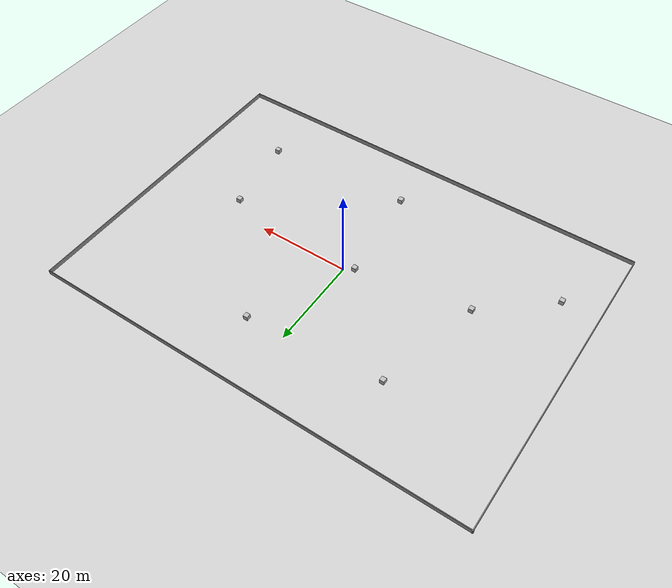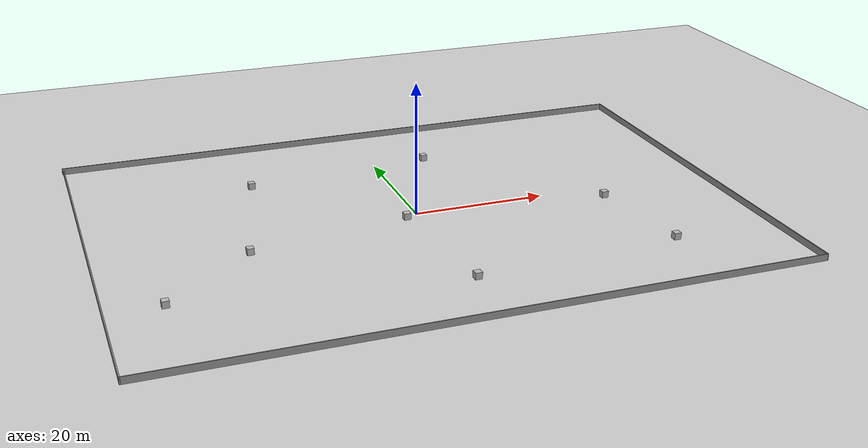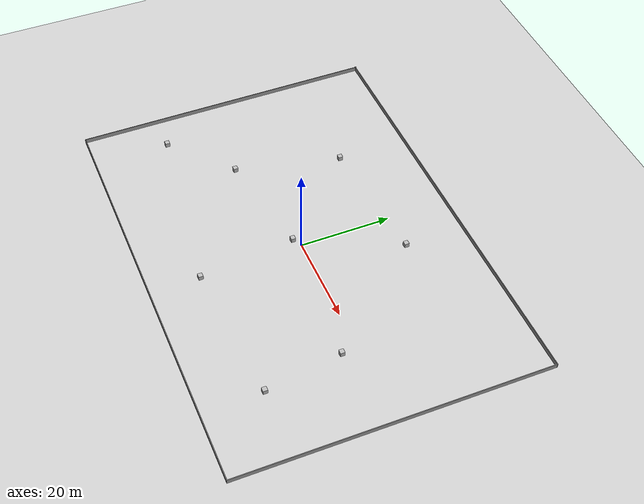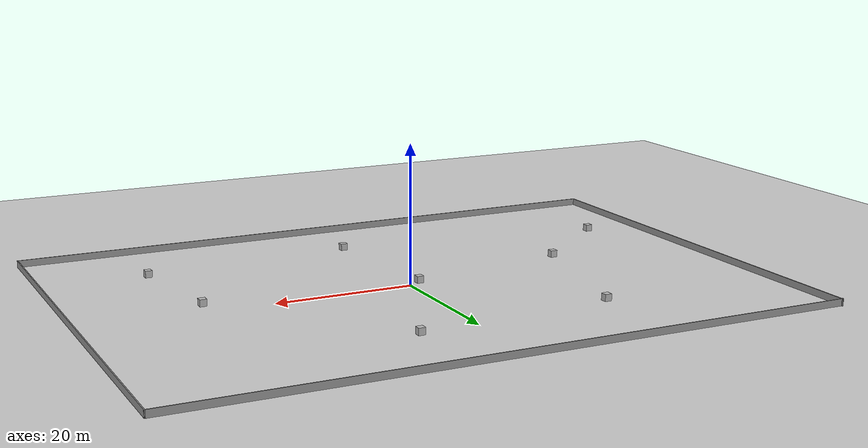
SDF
<sdf version="1.4">
 <world name="default">
  <include><uri>model://ground_plane</uri></include>
  <include><uri>model://sun</uri></include>
  <plugin name="dtfPlugin" filename="libdist_to_flag.so"><nb_flags>5</nb_flags></plugin>
  <include><uri>model://walls</uri><name>limits</name></include>
  <include><uri>model://cube</uri><pose>-1.9 -1.2 0 0 0 0</pose><name>obstacle_1</name></include>
  <include><uri>model://cube</uri><pose>-26 -5.2 0 0 0 0</pose><name>obstacle_2</name></include>
  <include><uri>model://cube</uri><pose>0.5 -22.5 0 0 0 0</pose><name>obstacle_3</name></include>
  <include><uri>model://cube</uri><pose>29 -3.45 0 0 0 0</pose><name>obstacle_4</name></include>
  <include><uri>model://cube</uri><pose>-20.6 17.75 0 0 0 0</pose><name>obstacle_5</name></include>
  <include><uri>model://cube</uri><pose>8.4 20.2 0 0 0 0</pose><name>obstacle_6</name></include>
  <include><uri>model://cube</uri><pose>31.5 -20.4 0 0 0 0</pose><name>obstacle_7</name></include>
  <include><uri>model://cube</uri><pose>-39.45 -16.7 0 0 0 0</pose><name>obstacle_8</name></include>
 </world>
</sdf>

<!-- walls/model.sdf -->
<sdf version='1.6'>
  <model name='walls'>
    <pose frame=''>0.580204 -5.79028 0 0 -0 0</pose>
    <link name='Wall_0'>
      <collision name='Wall_0_Collision'>
        <geometry>
          <box>
            <size>95 0.15 1</size>
          </box>
        </geometry>
        <pose frame=''>0 0 0.5 0 -0 0</pose>
      </collision>
      <visual name='Wall_0_Visual'>
        <pose frame=''>0 0 0.5 0 -0 0</pose>
        <geometry>
          <box>
            <size>95 0.15 1</size>
          </box>
        </geometry>
        <material>
          <script>
            <uri>file://media/materials/scripts/gazebo.material</uri>
            <name>Gazebo/Grey</name>
          </script>
          <ambient>1 1 1 1</ambient>
        </material>
        <meta>
          <layer>0</layer>
        </meta>
      </visual>
      <pose frame=''>-0.000204 33.4423 0 0 -0 0</pose>
    </link>
    <link name='Wall_1'>
      <collision name='Wall_1_Collision'>
        <geometry>
          <box>
            <size>67.1433 0.15 1</size>
          </box>
        </geometry>
        <pose frame=''>0 0 0.5 0 -0 0</pose>
      </collision>
      <visual name='Wall_1_Visual'>
        <pose frame=''>0 0 0.5 0 -0 0</pose>
        <geometry>
          <box>
            <size>67.1433 0.15 1</size>
          </box>
        </geometry>
        <material>
          <script>
            <uri>file://media/materials/scripts/gazebo.material</uri>
            <name>Gazebo/Grey</name>
          </script>
          <ambient>1 1 1 1</ambient>
        </material>
        <meta>
          <layer>0</layer>
        </meta>
      </visual>
      <pose frame=''>47.2433 -0.053719 0 0 -0 -1.57621</pose>
    </link>
    <link name='Wall_2'>
      <collision name='Wall_2_Collision'>
        <geometry>
          <box>
            <size>94.5 0.15 1</size>
          </box>
        </geometry>
        <pose frame=''>0 0 0.5 0 -0 0</pose>
      </collision>
      <visual name='Wall_2_Visual'>
        <pose frame=''>0 0 0.5 0 -0 0</pose>
        <geometry>
          <box>
            <size>94.5 0.15 1</size>
          </box>
        </geometry>
        <material>
          <script>
            <uri>file://media/materials/scripts/gazebo.material</uri>
            <name>Gazebo/Grey</name>
          </script>
          <ambient>1 1 1 1</ambient>
        </material>
        <meta>
          <layer>0</layer>
        </meta>
      </visual>
      <pose frame=''>-0.113204 -33.5497 0 0 -0 3.14159</pose>
    </link>
    <link name='Wall_3'>
      <collision name='Wall_3_Collision'>
        <geometry>
          <box>
            <size>67.25 0.15 1</size>
          </box>
        </geometry>
        <pose frame=''>0 0 0.5 0 -0 0</pose>
      </collision>
      <visual name='Wall_3_Visual'>
        <pose frame=''>0 0 0.5 0 -0 0</pose>
        <geometry>
          <box>
            <size>67.25 0.15 1</size>
          </box>
        </geometry>
        <material>
          <script>
            <uri>file://media/materials/scripts/gazebo.material</uri>
            <name>Gazebo/Grey</name>
          </script>
          <ambient>1 1 1 1</ambient>
        </material>
        <meta>
          <layer>0</layer>
        </meta>
      </visual>
      <pose frame=''>-47.2882 0.000281 0 0 -0 1.5708</pose>
    </link>
    <static>1</static>
  </model>
</sdf>

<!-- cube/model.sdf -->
<sdf version="1.4">
  <model name="cube">
    <static>true</static>
    <link name="cube">
      <visual name="visual_cube">
        <pose>0 0 0.5 0 0 0</pose>
        <geometry>
          <box>
            <size>1 1 1</size>
          </box>
        </geometry>
        <material>
          <script>
            <uri>file://media/materials/scripts/gazebo.material</uri>
            <name>Gazebo/CoM</name>
          </script>
        </material>
      </visual>
      <collision name="collision_cube">
        <pose>0 0 0.5 0 0 0</pose>
        <geometry>
          <box>
            <size>1 1 1</size>
          </box>
        </geometry>
      </collision>
    </link>
  </model>
</sdf>
